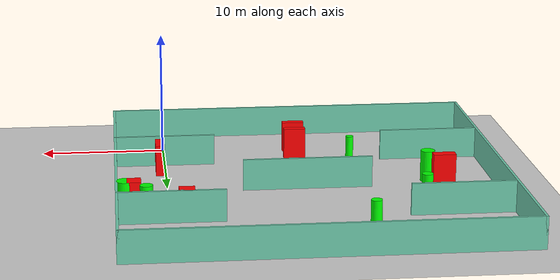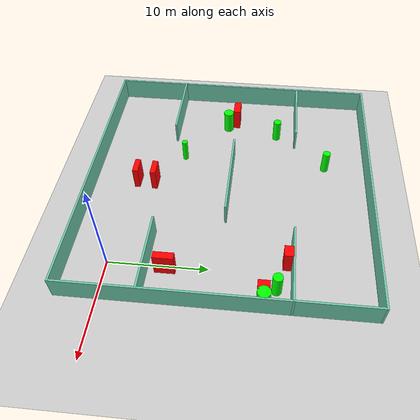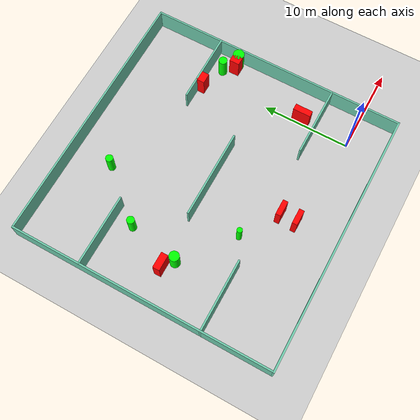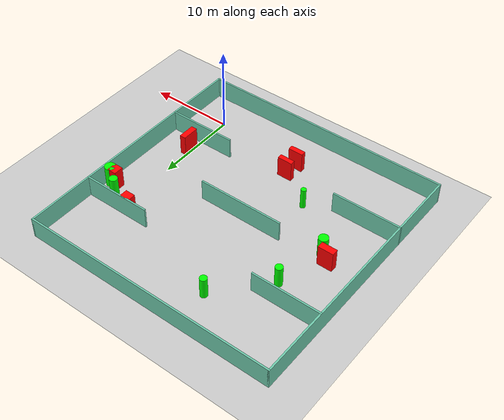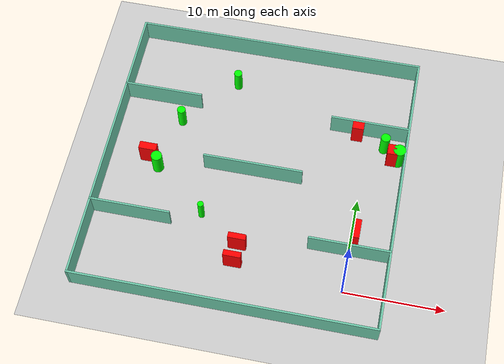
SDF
<sdf version="1.7">
 <world name="default">
  <light name="sun" type="directional">
   <pose>0 0 10 0 -0 0</pose>
   <diffuse>0.8 0.8 0.8 1</diffuse>
   <specular>0.2 0.2 0.2 1</specular>
   <attenuation>
    <range>1000</range>
    <constant>0.9</constant>
    <linear>0.01</linear>
    <quadratic>0.001</quadratic>
   </attenuation>
   <direction>-0.5 0.1 -0.9</direction>
   <spot><inner_angle>0</inner_angle><outer_angle>0</outer_angle><falloff>0</falloff></spot>
  </light>
  <model name="ground_plane">
   <static>1</static>
   <link name="link">
    <collision name="collision">
     <geometry><plane><normal>0 0 1</normal><size>100 100</size></plane></geometry>
     <surface>
      <contact><collide_bitmask>65535</collide_bitmask></contact>
      <friction><ode><mu>100</mu><mu2>50</mu2></ode></friction>
     </surface>
    </collision>
    <visual name="visual">
     <cast_shadows>0</cast_shadows>
     <geometry><plane><normal>0 0 1</normal><size>100 100</size></plane></geometry>
     <material>
      <script><uri>file://media/materials/scripts/gazebo.material</uri><name>Gazebo/Grey</name></script>
     </material>
    </visual>
   </link>
  </model>
  <gravity>0 0 -9.8</gravity>
  <magnetic_field>6e-06 2.3e-05 -4.2e-05</magnetic_field>
  <atmosphere type="adiabatic"/>
  <physics type="ode">
   <max_step_size>0.001</max_step_size>
   <real_time_factor>1</real_time_factor>
   <real_time_update_rate>1000</real_time_update_rate>
  </physics>
  <scene><ambient>0.4 0.4 0.4 1</ambient><background>0.7 0.7 0.7 1</background><shadows>1</shadows></scene>
  <spherical_coordinates>
   <surface_model>EARTH_WGS84</surface_model>
   <latitude_deg>0</latitude_deg>
   <longitude_deg>0</longitude_deg>
   <elevation>0</elevation>
   <heading_deg>0</heading_deg>
  </spherical_coordinates>
  <model name="my_base_walls">
   <link name="Wall_10">
    <collision name="Wall_10_Collision">
     <geometry><box><size>8.2 0.2 2.5</size></box></geometry>
     <pose>0 0 1.25 0 -0 0</pose>
    </collision>
    <visual name="Wall_10_Visual">
     <pose>0 0 1.25 0 -0 0</pose>
     <geometry><box><size>8.2 0.2 2.5</size></box></geometry>
     <material>
      <script><uri>file://media/materials/scripts/gazebo.material</uri><name>Gazebo/Grey</name></script>
      <ambient>0.435294 0.796078 0.67451 1</ambient>
     </material>
     <meta><layer>0</layer></meta>
    </visual>
    <pose>-11 -7 0 0 -0 0</pose>
   </link>
   <link name="Wall_12">
    <collision name="Wall_12_Collision">
     <geometry><box><size>8.2 0.2 2.5</size></box></geometry>
     <pose>0 0 1.25 0 -0 0</pose>
    </collision>
    <visual name="Wall_12_Visual">
     <pose>0 0 1.25 0 -0 0</pose>
     <geometry><box><size>8.2 0.2 2.5</size></box></geometry>
     <material>
      <script><uri>file://media/materials/scripts/gazebo.material</uri><name>Gazebo/Grey</name></script>
      <ambient>0.435294 0.796078 0.67451 1</ambient>
     </material>
     <meta><layer>0</layer></meta>
    </visual>
    <pose>-11 7 0 0 -0 0</pose>
   </link>
   <link name="Wall_14">
    <collision name="Wall_14_Collision">
     <geometry><box><size>8.2 0.2 2.5</size></box></geometry>
     <pose>0 0 1.25 0 -0 0</pose>
    </collision>
    <visual name="Wall_14_Visual">
     <pose>0 0 1.25 0 -0 0</pose>
     <geometry><box><size>8.2 0.2 2.5</size></box></geometry>
     <material>
      <script><uri>file://media/materials/scripts/gazebo.material</uri><name>Gazebo/Grey</name></script>
      <ambient>0.435294 0.796078 0.67451 1</ambient>
     </material>
     <meta><layer>0</layer></meta>
    </visual>
    <pose>11 7 0 0 -0 3.14159</pose>
   </link>
   <link name="Wall_16">
    <collision name="Wall_16_Collision">
     <geometry><box><size>10.2 0.2 2.5</size></box></geometry>
     <pose>0 0 1.25 0 -0 0</pose>
    </collision>
    <visual name="Wall_16_Visual">
     <pose>0 0 1.25 0 -0 0</pose>
     <geometry><box><size>10.2 0.2 2.5</size></box></geometry>
     <material>
      <script><uri>file://media/materials/scripts/gazebo.material</uri><name>Gazebo/Grey</name></script>
      <ambient>0.435294 0.796078 0.67451 1</ambient>
     </material>
     <meta><layer>0</layer></meta>
    </visual>
    <pose>0 0 0 0 -0 3.14159</pose>
   </link>
   <link name="Wall_2">
    <collision name="Wall_2_Collision">
     <geometry><box><size>30.2 0.2 2.5</size></box></geometry>
     <pose>0 0 1.25 0 -0 0</pose>
    </collision>
    <visual name="Wall_2_Visual">
     <pose>0 0 1.25 0 -0 0</pose>
     <geometry><box><size>30.2 0.2 2.5</size></box></geometry>
     <material>
      <script><uri>file://media/materials/scripts/gazebo.material</uri><name>Gazebo/Grey</name></script>
      <ambient>0.435294 0.796078 0.67451 1</ambient>
     </material>
     <meta><layer>0</layer></meta>
    </visual>
    <pose>0 -15 0 0 -0 3.14159</pose>
   </link>
   <link name="Wall_3">
    <collision name="Wall_3_Collision">
     <geometry><box><size>30.2 0.2 2.5</size></box></geometry>
     <pose>0 0 1.25 0 -0 0</pose>
    </collision>
    <visual name="Wall_3_Visual">
     <pose>0 0 1.25 0 -0 0</pose>
     <geometry><box><size>30.2 0.2 2.5</size></box></geometry>
     <material>
      <script><uri>file://media/materials/scripts/gazebo.material</uri><name>Gazebo/Grey</name></script>
      <ambient>0.435294 0.796078 0.67451 1</ambient>
     </material>
     <meta><layer>0</layer></meta>
    </visual>
    <pose>-15 0 0 0 -0 1.5708</pose>
   </link>
   <link name="Wall_4">
    <collision name="Wall_4_Collision">
     <geometry><box><size>30.2 0.2 2.5</size></box></geometry>
     <pose>0 0 1.25 0 -0 0</pose>
    </collision>
    <visual name="Wall_4_Visual">
     <pose>0 0 1.25 0 -0 0</pose>
     <geometry><box><size>30.2 0.2 2.5</size></box></geometry>
     <material>
      <script><uri>file://media/materials/scripts/gazebo.material</uri><name>Gazebo/Grey</name></script>
      <ambient>0.435294 0.796078 0.67451 1</ambient>
     </material>
     <meta><layer>0</layer></meta>
    </visual>
    <pose>0 15 0 0 -0 0</pose>
   </link>
   <link name="Wall_6">
    <collision name="Wall_6_Collision">
     <geometry><box><size>30.2 0.2 2.5</size></box></geometry>
     <pose>0 0 1.25 0 -0 0</pose>
    </collision>
    <visual name="Wall_6_Visual">
     <pose>0 0 1.25 0 -0 0</pose>
     <geometry><box><size>30.2 0.2 2.5</size></box></geometry>
     <material>
      <script><uri>file://media/materials/scripts/gazebo.material</uri><name>Gazebo/Grey</name></script>
      <ambient>0.435294 0.796078 0.67451 1</ambient>
     </material>
     <meta><layer>0</layer></meta>
    </visual>
    <pose>15 0 0 0 -0 1.5708</pose>
   </link>
   <link name="Wall_8">
    <collision name="Wall_8_Collision">
     <geometry><box><size>8.2 0.2 2.5</size></box></geometry>
     <pose>0 0 1.25 0 -0 0</pose>
    </collision>
    <visual name="Wall_8_Visual">
     <pose>0 0 1.25 0 -0 0</pose>
     <geometry><box><size>8.2 0.2 2.5</size></box></geometry>
     <material>
      <script><uri>file://media/materials/scripts/gazebo.material</uri><name>Gazebo/Grey</name></script>
      <ambient>0.435294 0.796078 0.67451 1</ambient>
     </material>
     <meta><layer>0</layer></meta>
    </visual>
    <pose>11 -7 0 0 -0 3.14159</pose>
   </link>
   <static>1</static>
   <pose>-11 11 0 0 -0 0</pose>
  </model>
  <model name="cylinder1">
   <static>1</static>
   <link name="link">
    <inertial>
     <mass>1</mass>
     <inertia><ixx>0.5</ixx><ixy>0</ixy><ixz>0</ixz><iyy>0.5</iyy><iyz>0</iyz><izz>1</izz></inertia>
    </inertial>
    <collision name="collision">
     <geometry><cylinder><radius>0.30717421473704487</radius><length>2.5</length></cylinder></geometry>
    </collision>
    <visual name="visual">
     <geometry><cylinder><radius>0.30717421473704487</radius><length>2.5</length></cylinder></geometry>
     <material>
      <ambient>0 1 0 1</ambient>
      <diffuse>0 1 0 1</diffuse>
      <specular>0.1 0.1 0.1 1</specular>
      <emissive>0 0 0 0</emissive>
     </material>
    </visual>
   </link>
   <pose>-15.117221285217422 5.458672201979546 1.25 0 0 0</pose>
  </model>
  <model name="cylinder2">
   <static>1</static>
   <link name="link">
    <inertial>
     <mass>1</mass>
     <inertia><ixx>0.5</ixx><ixy>0</ixy><ixz>0</ixz><iyy>0.5</iyy><iyz>0</iyz><izz>1</izz></inertia>
    </inertial>
    <collision name="collision">
     <geometry><cylinder><radius>0.4181210081253362</radius><length>2.5</length></cylinder></geometry>
    </collision>
    <visual name="visual">
     <geometry><cylinder><radius>0.4181210081253362</radius><length>2.5</length></cylinder></geometry>
     <material>
      <ambient>0 1 0 1</ambient>
      <diffuse>0 1 0 1</diffuse>
      <specular>0.1 0.1 0.1 1</specular>
      <emissive>0 0 0 0</emissive>
     </material>
    </visual>
   </link>
   <pose>-14.707896210104922 21.407626257755574 1.25 0 0 0</pose>
  </model>
  <model name="cylinder3">
   <static>1</static>
   <link name="link">
    <inertial>
     <mass>1</mass>
     <inertia><ixx>0.5</ixx><ixy>0</ixy><ixz>0</ixz><iyy>0.5</iyy><iyz>0</iyz><izz>1</izz></inertia>
    </inertial>
    <collision name="collision">
     <geometry><cylinder><radius>0.43073211481267215</radius><length>2.5</length></cylinder></geometry>
    </collision>
    <visual name="visual">
     <geometry><cylinder><radius>0.43073211481267215</radius><length>2.5</length></cylinder></geometry>
     <material>
      <ambient>0 1 0 1</ambient>
      <diffuse>0 1 0 1</diffuse>
      <specular>0.1 0.1 0.1 1</specular>
      <emissive>0 0 0 0</emissive>
     </material>
    </visual>
   </link>
   <pose>-19.558244651844767 15.797698107432392 1.25 0 0 0</pose>
  </model>
  <model name="cylinder4">
   <static>1</static>
   <link name="link">
    <inertial>
     <mass>1</mass>
     <inertia><ixx>0.5</ixx><ixy>0</ixy><ixz>0</ixz><iyy>0.5</iyy><iyz>0</iyz><izz>1</izz></inertia>
    </inertial>
    <collision name="collision">
     <geometry><cylinder><radius>0.6391754301570598</radius><length>2.5</length></cylinder></geometry>
    </collision>
    <visual name="visual">
     <geometry><cylinder><radius>0.6391754301570598</radius><length>2.5</length></cylinder></geometry>
     <material>
      <ambient>0 1 0 1</ambient>
      <diffuse>0 1 0 1</diffuse>
      <specular>0.1 0.1 0.1 1</specular>
      <emissive>0 0 0 0</emissive>
     </material>
    </visual>
   </link>
   <pose>3.360251482771652 15.373296749648482 1.25 0 0 0</pose>
  </model>
  <model name="cylinder5">
   <static>1</static>
   <link name="link">
    <inertial>
     <mass>1</mass>
     <inertia><ixx>0.5</ixx><ixy>0</ixy><ixz>0</ixz><iyy>0.5</iyy><iyz>0</iyz><izz>1</izz></inertia>
    </inertial>
    <collision name="collision">
     <geometry><cylinder><radius>0.4884117104327558</radius><length>2.5</length></cylinder></geometry>
    </collision>
    <visual name="visual">
     <geometry><cylinder><radius>0.4884117104327558</radius><length>2.5</length></cylinder></geometry>
     <material>
      <ambient>0 1 0 1</ambient>
      <diffuse>0 1 0 1</diffuse>
      <specular>0.1 0.1 0.1 1</specular>
      <emissive>0 0 0 0</emissive>
     </material>
    </visual>
   </link>
   <pose>1.7681371771302175 16.551270056221238 1.25 0 0 0</pose>
  </model>
  <model name="cylinder6">
   <static>1</static>
   <link name="link">
    <inertial>
     <mass>1</mass>
     <inertia><ixx>0.5</ixx><ixy>0</ixy><ixz>0</ixz><iyy>0.5</iyy><iyz>0</iyz><izz>1</izz></inertia>
    </inertial>
    <collision name="collision">
     <geometry><cylinder><radius>0.5606407251312868</radius><length>2.5</length></cylinder></geometry>
    </collision>
    <visual name="visual">
     <geometry><cylinder><radius>0.5606407251312868</radius><length>2.5</length></cylinder></geometry>
     <material>
      <ambient>0 1 0 1</ambient>
      <diffuse>0 1 0 1</diffuse>
      <specular>0.1 0.1 0.1 1</specular>
      <emissive>0 0 0 0</emissive>
     </material>
    </visual>
   </link>
   <pose>-20.735309293055693 9.940460827303951 1.25 0 0 0</pose>
  </model>
  <model name="box1">
   <static>1</static>
   <link name="link">
    <inertial>
     <mass>1</mass>
     <inertia><ixx>0.083</ixx><ixy>0</ixy><ixz>0</ixz><iyy>0.083</iyy><iyz>0</iyz><izz>0.083</izz></inertia>
    </inertial>
    <collision name="collision">
     <geometry><box><size>0.7150991220452685 2.0207296370974697 2.5</size></box></geometry>
    </collision>
    <visual name="visual">
     <geometry><box><size>0.7150991220452685 2.0207296370974697 2.5</size></box></geometry>
     <material>
      <ambient>1 0 0 1</ambient>
      <diffuse>1 0 0 1</diffuse>
      <specular>0.1 0.1 0.1 1</specular>
      <emissive>0 0 0 0</emissive>
     </material>
    </visual>
    <sensor name="my_contact" type="contact">
     <contact><collision>box_collision</collision><topic>__default_topic__</topic></contact>
    </sensor>
   </link>
   <pose>0.4139971602876642 5.838762879685779 1.25 0 0 0</pose>
  </model>
  <model name="box2">
   <static>1</static>
   <link name="link">
    <inertial>
     <mass>1</mass>
     <inertia><ixx>0.083</ixx><ixy>0</ixy><ixz>0</ixz><iyy>0.083</iyy><iyz>0</iyz><izz>0.083</izz></inertia>
    </inertial>
    <collision name="collision">
     <geometry><box><size>1.1951749784472483 0.934937195263112 2.5</size></box></geometry>
    </collision>
    <visual name="visual">
     <geometry><box><size>1.1951749784472483 0.934937195263112 2.5</size></box></geometry>
     <material>
      <ambient>1 0 0 1</ambient>
      <diffuse>1 0 0 1</diffuse>
      <specular>0.1 0.1 0.1 1</specular>
      <emissive>0 0 0 0</emissive>
     </material>
    </visual>
    <sensor name="my_contact" type="contact">
     <contact><collision>box_collision</collision><topic>__default_topic__</topic></contact>
    </sensor>
   </link>
   <pose>-1.2001841671174134 17.52813194523654 1.25 0 0 0</pose>
  </model>
  <model name="box3">
   <static>1</static>
   <link name="link">
    <inertial>
     <mass>1</mass>
     <inertia><ixx>0.083</ixx><ixy>0</ixy><ixz>0</ixz><iyy>0.083</iyy><iyz>0</iyz><izz>0.083</izz></inertia>
    </inertial>
    <collision name="collision">
     <geometry><box><size>1.7646020860017817 0.5871869224663061 2.5</size></box></geometry>
    </collision>
    <visual name="visual">
     <geometry><box><size>1.7646020860017817 0.5871869224663061 2.5</size></box></geometry>
     <material>
      <ambient>1 0 0 1</ambient>
      <diffuse>1 0 0 1</diffuse>
      <specular>0.1 0.1 0.1 1</specular>
      <emissive>0 0 0 0</emissive>
     </material>
    </visual>
    <sensor name="my_contact" type="contact">
     <contact><collision>box_collision</collision><topic>__default_topic__</topic></contact>
    </sensor>
   </link>
   <pose>-10.950808330001248 0.8368078444447962 1.25 0 0 0</pose>
  </model>
  <model name="box4">
   <static>1</static>
   <link name="link">
    <inertial>
     <mass>1</mass>
     <inertia><ixx>0.083</ixx><ixy>0</ixy><ixz>0</ixz><iyy>0.083</iyy><iyz>0</iyz><izz>0.083</izz></inertia>
    </inertial>
    <collision name="collision">
     <geometry><box><size>1.0747184415615934 1.1589696232611268 2.5</size></box></geometry>
    </collision>
    <visual name="visual">
     <geometry><box><size>1.0747184415615934 1.1589696232611268 2.5</size></box></geometry>
     <material>
      <ambient>1 0 0 1</ambient>
      <diffuse>1 0 0 1</diffuse>
      <specular>0.1 0.1 0.1 1</specular>
      <emissive>0 0 0 0</emissive>
     </material>
    </visual>
    <sensor name="my_contact" type="contact">
     <contact><collision>box_collision</collision><topic>__default_topic__</topic></contact>
    </sensor>
   </link>
   <pose>2.67970054132444 15.331727259699441 1.25 0 0 0</pose>
  </model>
  <model name="box5">
   <static>1</static>
   <link name="link">
    <inertial>
     <mass>1</mass>
     <inertia><ixx>0.083</ixx><ixy>0</ixy><ixz>0</ixz><iyy>0.083</iyy><iyz>0</iyz><izz>0.083</izz></inertia>
    </inertial>
    <collision name="collision">
     <geometry><box><size>1.7793894050788572 0.5924410065313742 2.5</size></box></geometry>
    </collision>
    <visual name="visual">
     <geometry><box><size>1.7793894050788572 0.5924410065313742 2.5</size></box></geometry>
     <material>
      <ambient>1 0 0 1</ambient>
      <diffuse>1 0 0 1</diffuse>
      <specular>0.1 0.1 0.1 1</specular>
      <emissive>0 0 0 0</emissive>
     </material>
    </visual>
    <sensor name="my_contact" type="contact">
     <contact><collision>box_collision</collision><topic>__default_topic__</topic></contact>
    </sensor>
   </link>
   <pose>-10.880624262560422 2.759317272022905 1.25 0 0 0</pose>
  </model>
  <model name="box6">
   <static>1</static>
   <link name="link">
    <inertial>
     <mass>1</mass>
     <inertia><ixx>0.083</ixx><ixy>0</ixy><ixz>0</ixz><iyy>0.083</iyy><iyz>0</iyz><izz>0.083</izz></inertia>
    </inertial>
    <collision name="collision">
     <geometry><box><size>1.7987483959369177 0.7864036556365445 2.5</size></box></geometry>
    </collision>
    <visual name="visual">
     <geometry><box><size>1.7987483959369177 0.7864036556365445 2.5</size></box></geometry>
     <material>
      <ambient>1 0 0 1</ambient>
      <diffuse>1 0 0 1</diffuse>
      <specular>0.1 0.1 0.1 1</specular>
      <emissive>0 0 0 0</emissive>
     </material>
    </visual>
    <sensor name="my_contact" type="contact">
     <contact><collision>box_collision</collision><topic>__default_topic__</topic></contact>
    </sensor>
   </link>
   <pose>-21.863221043159072 10.891358465379804 1.25 0 0 0</pose>
  </model>
 </world>
</sdf>
